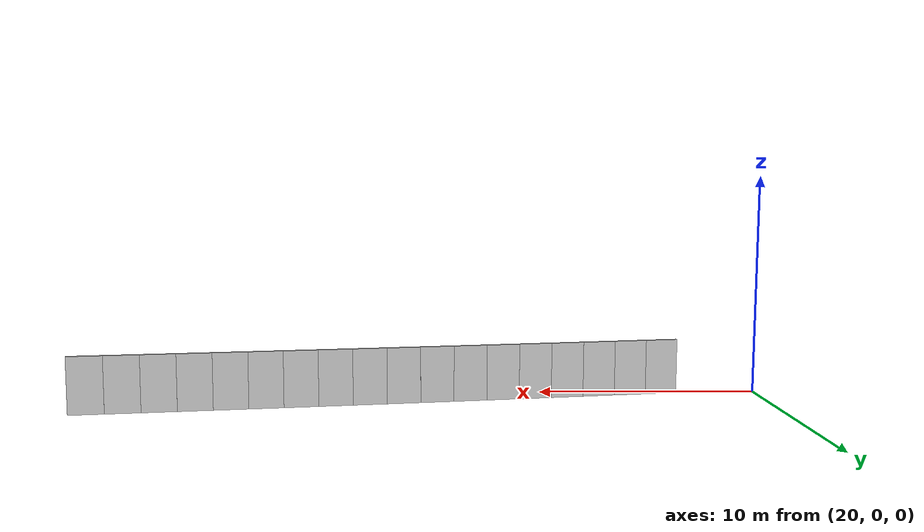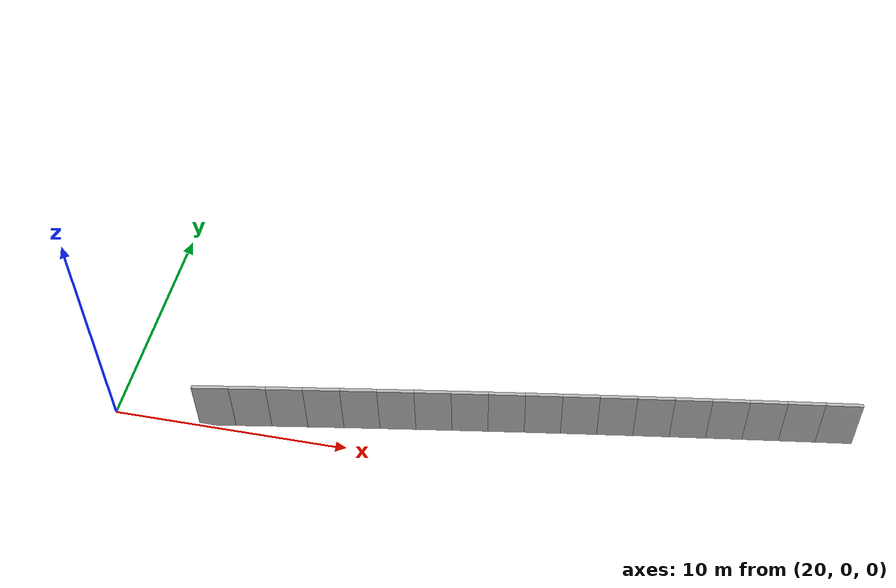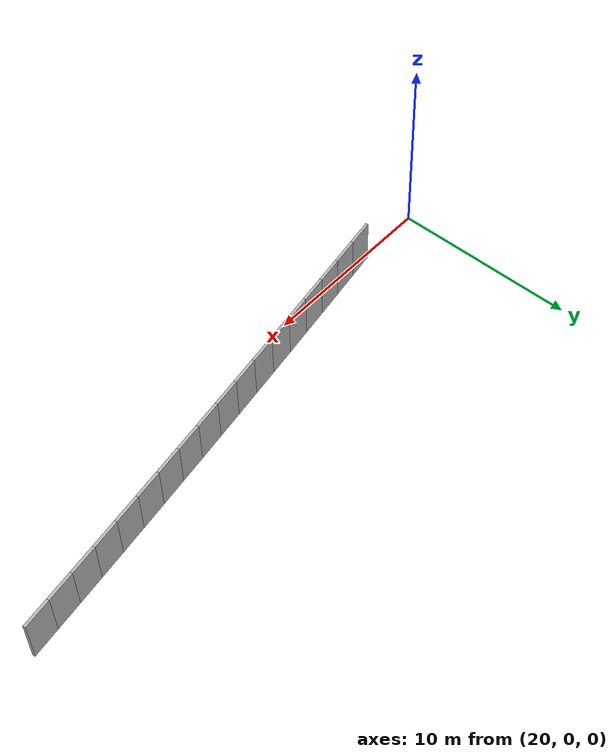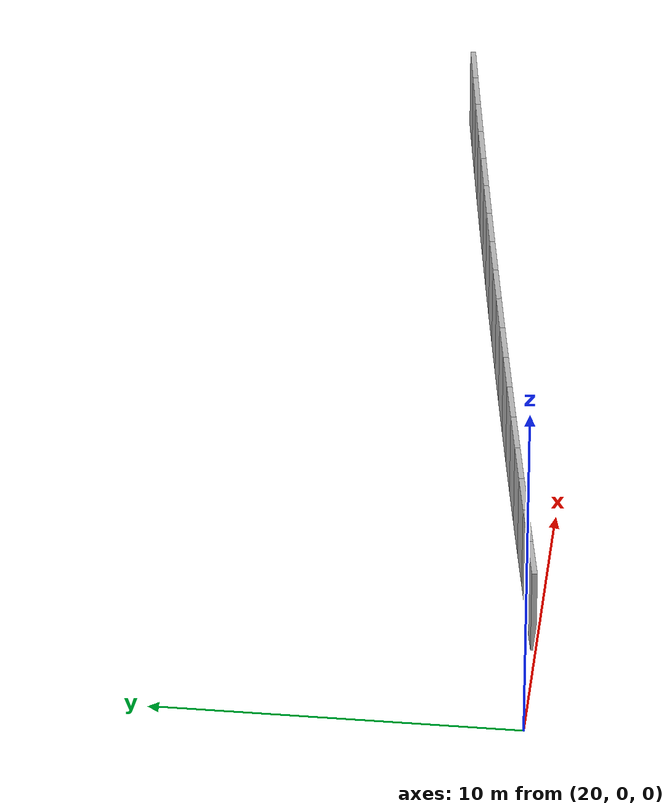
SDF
<?xml version="1.0" ?>
<sdf version="1.6">
  <model name="sps_2047">
    <pose frame="">0 0 0 0 -0 0</pose>
    <static>1</static>
    <self_collide>0</self_collide>
    <allow_auto_disable>0</allow_auto_disable>
    <link name="Wall5563">
      <kinematic>0</kinematic>
      <gravity>1</gravity>
      <self_collide>0</self_collide>
      <collision name="collision">
        <geometry>
          <box>
            <size>1.50293 0.15 2.5</size>
          </box>
        </geometry>
        <pose frame="">0 0 0 0 -0 0</pose>
      </collision>
      <visual name="visual">
        <geometry>
          <box>
            <size>1.50293 0.15 2.5</size>
          </box>
        </geometry>
        <pose frame="">0 0 0 0 -0 0</pose>
        <cast_shadows>1</cast_shadows>
        <transparency>0.0</transparency>
      </visual>
      <pose frame="">49.6684 4.1216 1.25 0 0 -3.00127</pose>
    </link>
    <link name="Wall5564">
      <kinematic>0</kinematic>
      <gravity>1</gravity>
      <self_collide>0</self_collide>
      <collision name="collision">
        <geometry>
          <box>
            <size>1.50315 0.15 2.5</size>
          </box>
        </geometry>
        <pose frame="">0 0 0 0 -0 0</pose>
      </collision>
      <visual name="visual">
        <geometry>
          <box>
            <size>1.50315 0.15 2.5</size>
          </box>
        </geometry>
        <pose frame="">0 0 0 0 -0 0</pose>
        <cast_shadows>1</cast_shadows>
        <transparency>0.0</transparency>
      </visual>
      <pose frame="">48.1803 3.9102 1.25 0 0 -2.99969</pose>
    </link>
    <link name="Wall5565">
      <kinematic>0</kinematic>
      <gravity>1</gravity>
      <self_collide>0</self_collide>
      <collision name="collision">
        <geometry>
          <box>
            <size>1.50307 0.15 2.5</size>
          </box>
        </geometry>
        <pose frame="">0 0 0 0 -0 0</pose>
      </collision>
      <visual name="visual">
        <geometry>
          <box>
            <size>1.50307 0.15 2.5</size>
          </box>
        </geometry>
        <pose frame="">0 0 0 0 -0 0</pose>
        <cast_shadows>1</cast_shadows>
        <transparency>0.0</transparency>
      </visual>
      <pose frame="">46.6924 3.69639 1.25 0 0 -2.99804</pose>
    </link>
    <link name="Wall5566">
      <kinematic>0</kinematic>
      <gravity>1</gravity>
      <self_collide>0</self_collide>
      <collision name="collision">
        <geometry>
          <box>
            <size>1.50299 0.15 2.5</size>
          </box>
        </geometry>
        <pose frame="">0 0 0 0 -0 0</pose>
      </collision>
      <visual name="visual">
        <geometry>
          <box>
            <size>1.50299 0.15 2.5</size>
          </box>
        </geometry>
        <pose frame="">0 0 0 0 -0 0</pose>
        <cast_shadows>1</cast_shadows>
        <transparency>0.0</transparency>
      </visual>
      <pose frame="">45.205 3.48018 1.25 0 0 -2.99643</pose>
    </link>
    <link name="Wall5567">
      <kinematic>0</kinematic>
      <gravity>1</gravity>
      <self_collide>0</self_collide>
      <collision name="collision">
        <geometry>
          <box>
            <size>1.50313 0.15 2.5</size>
          </box>
        </geometry>
        <pose frame="">0 0 0 0 -0 0</pose>
      </collision>
      <visual name="visual">
        <geometry>
          <box>
            <size>1.50313 0.15 2.5</size>
          </box>
        </geometry>
        <pose frame="">0 0 0 0 -0 0</pose>
        <cast_shadows>1</cast_shadows>
        <transparency>0.0</transparency>
      </visual>
      <pose frame="">43.7179 3.26167 1.25 0 0 -2.99497</pose>
    </link>
    <link name="Wall5568">
      <kinematic>0</kinematic>
      <gravity>1</gravity>
      <self_collide>0</self_collide>
      <collision name="collision">
        <geometry>
          <box>
            <size>1.50303 0.15 2.5</size>
          </box>
        </geometry>
        <pose frame="">0 0 0 0 -0 0</pose>
      </collision>
      <visual name="visual">
        <geometry>
          <box>
            <size>1.50303 0.15 2.5</size>
          </box>
        </geometry>
        <pose frame="">0 0 0 0 -0 0</pose>
        <cast_shadows>1</cast_shadows>
        <transparency>0.0</transparency>
      </visual>
      <pose frame="">42.2312 3.04097 1.25 0 0 -2.99348</pose>
    </link>
    <link name="Wall5569">
      <kinematic>0</kinematic>
      <gravity>1</gravity>
      <self_collide>0</self_collide>
      <collision name="collision">
        <geometry>
          <box>
            <size>1.50305 0.15 2.5</size>
          </box>
        </geometry>
        <pose frame="">0 0 0 0 -0 0</pose>
      </collision>
      <visual name="visual">
        <geometry>
          <box>
            <size>1.50305 0.15 2.5</size>
          </box>
        </geometry>
        <pose frame="">0 0 0 0 -0 0</pose>
        <cast_shadows>1</cast_shadows>
        <transparency>0.0</transparency>
      </visual>
      <pose frame="">40.7448 2.81789 1.25 0 0 -2.99176</pose>
    </link>
    <link name="Wall5570">
      <kinematic>0</kinematic>
      <gravity>1</gravity>
      <self_collide>0</self_collide>
      <collision name="collision">
        <geometry>
          <box>
            <size>1.50305 0.15 2.5</size>
          </box>
        </geometry>
        <pose frame="">0 0 0 0 -0 0</pose>
      </collision>
      <visual name="visual">
        <geometry>
          <box>
            <size>1.50305 0.15 2.5</size>
          </box>
        </geometry>
        <pose frame="">0 0 0 0 -0 0</pose>
        <cast_shadows>1</cast_shadows>
        <transparency>0.0</transparency>
      </visual>
      <pose frame="">39.2588 2.5923 1.25 0 0 -2.99012</pose>
    </link>
    <link name="Wall5571">
      <kinematic>0</kinematic>
      <gravity>1</gravity>
      <self_collide>0</self_collide>
      <collision name="collision">
        <geometry>
          <box>
            <size>1.50317 0.15 2.5</size>
          </box>
        </geometry>
        <pose frame="">0 0 0 0 -0 0</pose>
      </collision>
      <visual name="visual">
        <geometry>
          <box>
            <size>1.50317 0.15 2.5</size>
          </box>
        </geometry>
        <pose frame="">0 0 0 0 -0 0</pose>
        <cast_shadows>1</cast_shadows>
        <transparency>0.0</transparency>
      </visual>
      <pose frame="">37.773 2.3643 1.25 0 0 -2.98853</pose>
    </link>
    <link name="Wall5572">
      <kinematic>0</kinematic>
      <gravity>1</gravity>
      <self_collide>0</self_collide>
      <collision name="collision">
        <geometry>
          <box>
            <size>1.50309 0.15 2.5</size>
          </box>
        </geometry>
        <pose frame="">0 0 0 0 -0 0</pose>
      </collision>
      <visual name="visual">
        <geometry>
          <box>
            <size>1.50309 0.15 2.5</size>
          </box>
        </geometry>
        <pose frame="">0 0 0 0 -0 0</pose>
        <cast_shadows>1</cast_shadows>
        <transparency>0.0</transparency>
      </visual>
      <pose frame="">36.2877 2.13399 1.25 0 0 -2.987</pose>
    </link>
    <link name="Wall5573">
      <kinematic>0</kinematic>
      <gravity>1</gravity>
      <self_collide>0</self_collide>
      <collision name="collision">
        <geometry>
          <box>
            <size>1.50312 0.15 2.5</size>
          </box>
        </geometry>
        <pose frame="">0 0 0 0 -0 0</pose>
      </collision>
      <visual name="visual">
        <geometry>
          <box>
            <size>1.50312 0.15 2.5</size>
          </box>
        </geometry>
        <pose frame="">0 0 0 0 -0 0</pose>
        <cast_shadows>1</cast_shadows>
        <transparency>0.0</transparency>
      </visual>
      <pose frame="">34.8027 1.90129 1.25 0 0 -2.98532</pose>
    </link>
    <link name="Wall5574">
      <kinematic>0</kinematic>
      <gravity>1</gravity>
      <self_collide>0</self_collide>
      <collision name="collision">
        <geometry>
          <box>
            <size>1.50329 0.15 2.5</size>
          </box>
        </geometry>
        <pose frame="">0 0 0 0 -0 0</pose>
      </collision>
      <visual name="visual">
        <geometry>
          <box>
            <size>1.50329 0.15 2.5</size>
          </box>
        </geometry>
        <pose frame="">0 0 0 0 -0 0</pose>
        <cast_shadows>1</cast_shadows>
        <transparency>0.0</transparency>
      </visual>
      <pose frame="">33.318 1.66621 1.25 0 0 -2.98381</pose>
    </link>
    <link name="Wall5575">
      <kinematic>0</kinematic>
      <gravity>1</gravity>
      <self_collide>0</self_collide>
      <collision name="collision">
        <geometry>
          <box>
            <size>1.5028 0.15 2.5</size>
          </box>
        </geometry>
        <pose frame="">0 0 0 0 -0 0</pose>
      </collision>
      <visual name="visual">
        <geometry>
          <box>
            <size>1.5028 0.15 2.5</size>
          </box>
        </geometry>
        <pose frame="">0 0 0 0 -0 0</pose>
        <cast_shadows>1</cast_shadows>
        <transparency>0.0</transparency>
      </visual>
      <pose frame="">31.8338 1.42891 1.25 0 0 -2.98228</pose>
    </link>
    <link name="Wall5576">
      <kinematic>0</kinematic>
      <gravity>1</gravity>
      <self_collide>0</self_collide>
      <collision name="collision">
        <geometry>
          <box>
            <size>1.50309 0.15 2.5</size>
          </box>
        </geometry>
        <pose frame="">0 0 0 0 -0 0</pose>
      </collision>
      <visual name="visual">
        <geometry>
          <box>
            <size>1.50309 0.15 2.5</size>
          </box>
        </geometry>
        <pose frame="">0 0 0 0 -0 0</pose>
        <cast_shadows>1</cast_shadows>
        <transparency>0.0</transparency>
      </visual>
      <pose frame="">30.3501 1.18919 1.25 0 0 -2.98054</pose>
    </link>
    <link name="Wall5577">
      <kinematic>0</kinematic>
      <gravity>1</gravity>
      <self_collide>0</self_collide>
      <collision name="collision">
        <geometry>
          <box>
            <size>1.50296 0.15 2.5</size>
          </box>
        </geometry>
        <pose frame="">0 0 0 0 -0 0</pose>
      </collision>
      <visual name="visual">
        <geometry>
          <box>
            <size>1.50296 0.15 2.5</size>
          </box>
        </geometry>
        <pose frame="">0 0 0 0 -0 0</pose>
        <cast_shadows>1</cast_shadows>
        <transparency>0.0</transparency>
      </visual>
      <pose frame="">28.8667 0.947097 1.25 0 0 -2.97909</pose>
    </link>
    <link name="Wall5578">
      <kinematic>0</kinematic>
      <gravity>1</gravity>
      <self_collide>0</self_collide>
      <collision name="collision">
        <geometry>
          <box>
            <size>1.50323 0.15 2.5</size>
          </box>
        </geometry>
        <pose frame="">0 0 0 0 -0 0</pose>
      </collision>
      <visual name="visual">
        <geometry>
          <box>
            <size>1.50323 0.15 2.5</size>
          </box>
        </geometry>
        <pose frame="">0 0 0 0 -0 0</pose>
        <cast_shadows>1</cast_shadows>
        <transparency>0.0</transparency>
      </visual>
      <pose frame="">27.3836 0.702712 1.25 0 0 -2.97747</pose>
    </link>
    <link name="Wall5579">
      <kinematic>0</kinematic>
      <gravity>1</gravity>
      <self_collide>0</self_collide>
      <collision name="collision">
        <geometry>
          <box>
            <size>1.50303 0.15 2.5</size>
          </box>
        </geometry>
        <pose frame="">0 0 0 0 -0 0</pose>
      </collision>
      <visual name="visual">
        <geometry>
          <box>
            <size>1.50303 0.15 2.5</size>
          </box>
        </geometry>
        <pose frame="">0 0 0 0 -0 0</pose>
        <cast_shadows>1</cast_shadows>
        <transparency>0.0</transparency>
      </visual>
      <pose frame="">25.9008 0.455886 1.25 0 0 -2.9758</pose>
    </link>
    <link name="Wall5580">
      <kinematic>0</kinematic>
      <gravity>1</gravity>
      <self_collide>0</self_collide>
      <collision name="collision">
        <geometry>
          <box>
            <size>1.50314 0.15 2.5</size>
          </box>
        </geometry>
        <pose frame="">0 0 0 0 -0 0</pose>
      </collision>
      <visual name="visual">
        <geometry>
          <box>
            <size>1.50314 0.15 2.5</size>
          </box>
        </geometry>
        <pose frame="">0 0 0 0 -0 0</pose>
        <cast_shadows>1</cast_shadows>
        <transparency>0.0</transparency>
      </visual>
      <pose frame="">24.4185 0.206771 1.25 0 0 -2.97437</pose>
    </link>
  </model>
</sdf>
